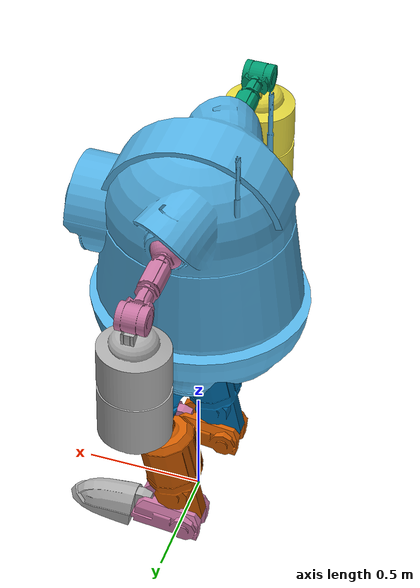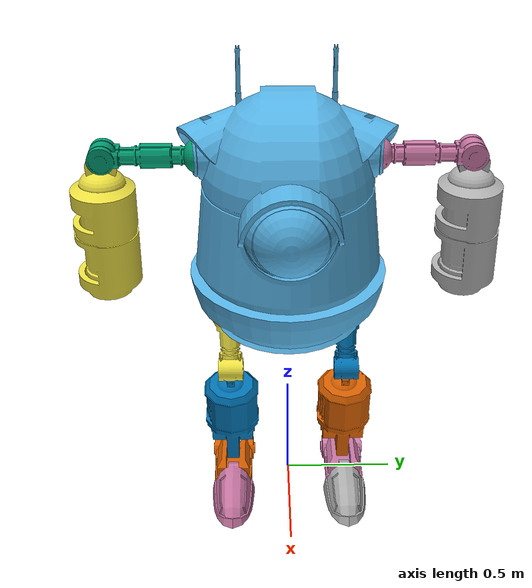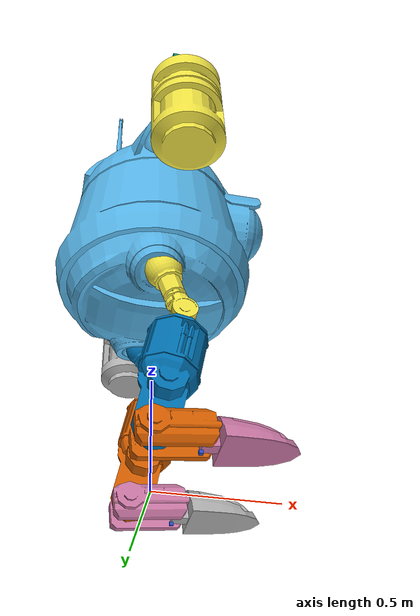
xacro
<?xml version="1.0"?>

<robot name="catbot" xmlns:xacro="http://www.ros.org/wiki/xacro">
<xacro:include filename="$(find catbot_description)/urdf/main.gazebo" />

<link name="base_footprint">
<inertial>
    <origin xyz="0.0 0.0 0.0" rpy="0 0 0" />
    <mass value="0.3" />
    <inertia ixx="0.1" ixy="0.1" ixz="0.1" iyy="0.1" iyz="0.1" izz="0.1"/>
</inertial>
<visual>
    <origin xyz="0 0 0" rpy="0 0 0" />
    <geometry>
     <cylinder length="0.001" radius="0.001" />
    </geometry>
</visual>
<collision>
<origin xyz="0 0.0 0" rpy="0 0 0" />
    <geometry>
     <cylinder length="0.001" radius="0.001" />
    </geometry>
</collision>
</link>

<link name="base_body">
<inertial>
    <origin xyz="0.0 0.0 0.5" rpy="0 0 0" />
    <mass value="4.0" />
    <inertia ixx="0.42841" ixy="-2.3739" ixz="0.00227" iyy="0.43178" iyz="1.46390" izz="0.08742"/>
</inertial>
<visual>
    <origin xyz="0 0 0" rpy="0 0 0" />
    <geometry>
    <mesh filename="package://catbot_description/meshes/dae/body.dae" scale="1 1 1" />
    </geometry>
</visual>
<collision>
<origin xyz="0 0.0 0" rpy="0 0 0" />
    <geometry>
    <mesh filename="package://catbot_description/meshes/dae/body.dae" scale="1 1 1" />
    </geometry>
</collision>
</link>

<joint name="base_joint" type="fixed">
    <axis xyz="0 0 0" />
    <origin xyz="0 0 0.80" rpy="0 0 0" />
    <parent link="base_footprint" />
    <child link="base_body" />
</joint>

<!-- ##########################################################
     ######################### left leg ########################
     ########################################################## -->

<joint
    name="bum_zlj" type="revolute">
    <origin xyz="-0.02 0.265 0.16" rpy="0 -0.3 0" />
    <parent link="base_body" />
    <child link="bum_zl" />
    <axis xyz="0 0 1" />
    <limit lower="-0.345" upper="0.345" effort="1000" velocity="3"/>
    <!-- dynamics damping="5" friction="0.0"/ -->
</joint>

<link name="bum_zl">
<inertial>
    <origin xyz="0.0 0.0 -0.19" rpy="0 0 0" />
    <mass value="0.3" />
    <inertia ixx="0.1" ixy="0.1" ixz="0.1" iyy="0.1" iyz="0.1" izz="0.1"/>
</inertial>
<visual>
    <origin xyz="0 0 0" rpy="0 0 1.571" />
    <geometry>
    <cylinder length="0.001" radius="0.001" />
    </geometry>
</visual>
<collision>
<origin xyz="0 0.0 0" rpy="0 0 1.571" />
    <geometry>
    <cylinder length="0.001" radius="0.001" />
    </geometry>
</collision>
</link>

<joint
    name="bum_xlj" type="revolute">
    <origin xyz="0 0 0" rpy="0 0 0" />
    <parent link="bum_zl" />
    <child link="bum_xl" />
    <axis xyz="1 0 0" />
    <limit lower="-0.345" upper="1" effort="1000" velocity="3"/>
    <!-- dynamics damping="5" friction="0.0"/ -->
</joint>

<link name="bum_xl">
<inertial>
    <origin xyz="0.0 0.0 -0.19" rpy="0 0 0" />
    <mass value="0.3" />
    <inertia ixx="0.1" ixy="0.1" ixz="0.1" iyy="0.1" iyz="0.1" izz="0.1"/>
</inertial>
<visual>
    <origin xyz="0 0 0" rpy="0 0 1.571" />
    <geometry>
    <cylinder length="0.001" radius="0.001" />
    </geometry>
</visual>
<collision>
<origin xyz="0 0.0 0" rpy="0 0 1.571" />
    <geometry>
    <cylinder length="0.001" radius="0.001" />
    </geometry>
</collision>
</link>

<joint
    name="bum_ylj" type="revolute">
    <origin xyz="0 0 0" rpy="0 0 3.142" />
    <parent link="bum_xl" />
    <child link="left_hip" />
    <axis xyz="0 1 0" />
    <limit lower="0" upper="1" effort="1000" velocity="3"/>
    <!-- dynamics damping="5" friction="0.0"/ -->
</joint>

<link name="left_hip">
<inertial>
    <origin xyz="0.0 0 -0.19" rpy="0 0 0" />
    <mass value="0.3" />
    <inertia ixx="0.31319" ixy="-1.5919" ixz="0.00039" iyy="0.314057" iyz="-0.00060" izz="0.02458"/>
</inertial>
<visual>
    <origin xyz="0 0 0" rpy="0 0 1.571" />
    <geometry>
    <mesh filename="package://catbot_description/meshes/dae/hip.dae" scale="1 1 1" />
    </geometry>
</visual>
<collision>
<origin xyz="0 0.0 0" rpy="0 0 1.571" />
    <geometry>
    <mesh filename="package://catbot_description/meshes/dae/hip.dae" scale="1 1 1" />
    </geometry>
</collision>
</link>

<joint
    name="knee_left" type="revolute">
    <origin xyz="0 0 -0.335" rpy="0 -0.5 0" />
    <parent link="left_hip" />
    <child link="left_shin" />
    <axis xyz="0 1 0" />
    <limit lower="-1.3" upper="0" effort="1000" velocity="3"/>
    <!-- dynamics damping="5" friction="0.0"/ -->
</joint>

<link name="left_shin">
<inertial>
    <origin xyz="0.0 0.0 -0.2" rpy="0 0 0" />
    <mass value="0.3" />
    <inertia ixx="0.283162" ixy="0.00034" ixz="0.001493" iyy="0.284290" iyz="0.000595" izz="0.0277465"/>
</inertial>
<visual>
    <origin xyz="0 0 0" rpy="0 0 1.571" />
    <geometry>
    <mesh filename="package://catbot_description/meshes/dae/shin.dae" scale="1 1 1" />
    </geometry>
</visual>
<collision>
<origin xyz="0 0.0 0" rpy="0 0 1.571" />
    <geometry>
    <mesh filename="package://catbot_description/meshes/dae/shin.dae" scale="1 1 1" />
    </geometry>
</collision>
</link>

<joint
    name="ankle_lj" type="revolute">
    <origin xyz="0 0 -0.58" rpy="0 0.3 0" />
    <parent link="left_shin" />
    <child link="left_ankle" />
    <axis xyz="0 1 0" />
    <limit lower="-1.3" upper="0.3" effort="1000" velocity="3"/>
    <!-- dynamics damping="5" friction="0.0"/ -->
</joint>

<link name="left_ankle">
<inertial>
    <origin xyz="0.0 0.0 0.0" rpy="0 0 0" />
    <mass value="0.3" />
    <inertia ixx="0.119924" ixy="-0.0003874" ixz="-0.0010433" iyy="0.166674" iyz="5.8010177" izz="0.1314669"/>
</inertial>
<visual>
    <origin xyz="-0.06 0 0" rpy="0 0 3.142" />
    <geometry>
    <mesh filename="package://catbot_description/meshes/dae/ankle.dae" scale="1 1 1" />
    </geometry>
</visual>
<collision>
<origin xyz="-0.06 0.0 0" rpy="0 0 3.142" />
    <geometry>
    <mesh filename="package://catbot_description/meshes/dae/ankle.dae" scale="1 1 1" />
    </geometry>
</collision>
</link>

<joint
    name="foot_lj" type="revolute">
    <origin xyz="-0.16 0 -0.028" rpy="0 0 0" />
    <parent link="left_ankle" />
    <child link="left_foot" />
    <axis xyz="0 1 0" />
    <limit lower="-0.4" upper="0.7" effort="1000" velocity="3"/>
    <!-- dynamics damping="5" friction="0.0"/ -->
</joint>

<link name="left_foot">
<inertial>
    <origin xyz="0.0 0.0 0.0" rpy="0 0 0" />
    <mass value="0.5" />
    <inertia ixx="0.10917" ixy="1.3005" ixz="-0.01020" iyy="0.15687" iyz="3.44815" izz="0.1"/>
</inertial>
<visual>
    <origin xyz="0 0 0" rpy="0 0 3.142" />
    <geometry>
    <mesh filename="package://catbot_description/meshes/dae/foot.dae" scale="1 1 1" />
    </geometry>
</visual>
<collision>
<origin xyz="0 0.0 0" rpy="0 0 3.142" />
    <geometry>
    <mesh filename="package://catbot_description/meshes/dae/foot.dae" scale="1 1 1" />
    </geometry>
</collision>
</link>

<joint
    name="contact_lj" type="fixed">
    <origin xyz="0 0 -0.043" rpy="0 0 0" />
    <parent link="left_foot" />
    <child link="left_leg_contact_sensor" />
    <axis xyz="0 1 0" />
    <!-- dynamics damping="5" friction="0.0"/ -->
</joint>

<link name="left_leg_contact_sensor">
<inertial >
            <origin xyz="0 0 0" rpy="0 0 0"/>
            <mass value="0.01" />
            <inertia ixx="1.28e-06" ixy="0.0" ixz="0.0" iyy="1.28e-06" iyz="0.0" izz="1.28e-06"/>
        </inertial>
        <collision>
            <origin xyz="0 0 0" rpy="0 0 0"/>
            <geometry>
                <box size="0.015 0.015 0.015"/>

            </geometry>
        </collision>
        <visual>
            <origin rpy="0.0 0 0" xyz="0 0 0"/>
            <geometry>
                <box size="0.015 0.01 0.015"/>

            </geometry>
        </visual>
</link>

<!-- ##########################################################
     ######################### right leg ########################
     ########################################################## -->

<joint
    name="bum_zrj" type="revolute">
    <origin xyz="-0.02 -0.265 0.16" rpy="0 -0.3 0" />
    <parent link="base_body" />
    <child link="bum_zr" />
    <axis xyz="0 0 1" />
    <limit lower="-0.345" upper="0.345" effort="1000" velocity="3"/>
    <!-- dynamics damping="5" friction="0.0"/ -->
</joint>

<link name="bum_zr">
<inertial>
    <origin xyz="0.0 0.0 -0.19" rpy="0 0 0" />
    <mass value="0.3" />
    <inertia ixx="0.1" ixy="0.1" ixz="0.1" iyy="0.1" iyz="0.1" izz="0.1"/>
</inertial>
<visual>
    <origin xyz="0 0 0" rpy="0 0 1.571" />
    <geometry>
    <cylinder length="0.001" radius="0.001" />
    </geometry>
</visual>
<collision>
<origin xyz="0 0.0 0" rpy="0 0 1.571" />
    <geometry>
    <cylinder length="0.001" radius="0.001" />
    </geometry>
</collision>
</link>

<joint
    name="bum_xrj" type="revolute">
    <origin xyz="0 0 0" rpy="0 0 0" />
    <parent link="bum_zr" />
    <child link="bum_xr" />
    <axis xyz="1 0 0" />
    <limit lower="-1" upper="0.345" effort="1000" velocity="3"/>
    <!-- dynamics damping="5" friction="0.0"/ -->
</joint>

<link name="bum_xr">
<inertial>
    <origin xyz="0.0 0.0 -0.19" rpy="0 0 0" />
    <mass value="0.3" />
    <inertia ixx="0.1" ixy="0.1" ixz="0.1" iyy="0.1" iyz="0.1" izz="0.1"/>
</inertial>
<visual>
    <origin xyz="0 0 0" rpy="0 0 1.571" />
    <geometry>
    <cylinder length="0.001" radius="0.001" />
    </geometry>
</visual>
<collision>
<origin xyz="0 0.0 0" rpy="0 0 1.571" />
    <geometry>
    <cylinder length="0.001" radius="0.001" />
    </geometry>
</collision>
</link>

<joint
    name="bum_yrj" type="revolute">
    <origin xyz="0 0 0" rpy="0 0 3.142" />
    <parent link="bum_xr" />
    <child link="right_hip" />
    <axis xyz="0 1 0" />
    <limit lower="0" upper="1" effort="1000" velocity="3"/>
    <!-- dynamics damping="5" friction="0.0"/ -->
</joint>

<link name="right_hip">
<inertial>
    <origin xyz="0.0 0 -0.19" rpy="0 0 0" />
    <mass value="0.3" />
    <inertia ixx="0.31319" ixy="-1.5919" ixz="0.00039" iyy="0.314057" iyz="-0.00060" izz="0.02458"/>
</inertial>
<visual>
    <origin xyz="0 0 0" rpy="0 0 1.571" />
    <geometry>
    <mesh filename="package://catbot_description/meshes/dae/hip.dae" scale="1 1 1" />
    </geometry>
</visual>
<collision>
<origin xyz="0 0.0 0" rpy="0 0 1.571" />
    <geometry>
    <mesh filename="package://catbot_description/meshes/dae/hip.dae" scale="1 1 1" />
    </geometry>
</collision>
</link>

<joint
    name="knee_right" type="revolute">
    <origin xyz="0 0 -0.335" rpy="0 -0.5 0" />
    <parent link="right_hip" />
    <child link="right_shin" />
    <axis xyz="0 1 0" />
    <limit lower="-1.3" upper="0" effort="1000" velocity="3"/>
    <!-- dynamics damping="5" friction="0.0"/ -->
</joint>

<link name="right_shin">
<inertial>
    <origin xyz="0.0 0.0 -0.2" rpy="0 0 0" />
    <mass value="0.3" />
    <inertia ixx="0.283162" ixy="0.00034" ixz="0.001493" iyy="0.284290" iyz="0.000595" izz="0.0277465"/>
</inertial>
<visual>
    <origin xyz="0 0 0" rpy="0 0 1.571" />
    <geometry>
    <mesh filename="package://catbot_description/meshes/dae/shin.dae" scale="1 1 1" />
    </geometry>
</visual>
<collision>
<origin xyz="0 0.0 0" rpy="0 0 1.571" />
    <geometry>
    <mesh filename="package://catbot_description/meshes/dae/shin.dae" scale="1 1 1" />
    </geometry>
</collision>
</link>

<joint
    name="ankle_rj" type="revolute">
    <origin xyz="0 0 -0.58" rpy="0 0.3 0" />
    <parent link="right_shin" />
    <child link="right_ankle" />
    <axis xyz="0 1 0" />
    <limit lower="-1.3" upper="0.3" effort="1000" velocity="3"/>
    <!-- dynamics damping="5" friction="0.0"/ -->
</joint>

<link name="right_ankle">
<inertial>
    <origin xyz="0.0 0.0 0.0" rpy="0 0 0" />
    <mass value="0.3" />
    <inertia ixx="0.119924" ixy="-0.0003874" ixz="-0.0010433" iyy="0.166674" iyz="5.8010177" izz="0.1314669"/>
</inertial>
<visual>
    <origin xyz="-0.06 0 0" rpy="0 0 3.142" />
    <geometry>
    <mesh filename="package://catbot_description/meshes/dae/ankle.dae" scale="1 1 1" />
    </geometry>
</visual>
<collision>
<origin xyz="-0.06 0.0 0" rpy="0 0 3.142" />
    <geometry>
    <mesh filename="package://catbot_description/meshes/dae/ankle.dae" scale="1 1 1" />
    </geometry>
</collision>
</link>

<joint
    name="foot_rj" type="revolute">
    <origin xyz="-0.16 0 -0.028" rpy="0 0 0" />
    <parent link="right_ankle" />
    <child link="right_foot" />
    <axis xyz="0 1 0" />
    <limit lower="-0.4" upper="0.7" effort="1000" velocity="3"/>
    <!-- dynamics damping="5" friction="0.0"/ -->
</joint>

<link name="right_foot">
<inertial>
    <origin xyz="0.0 0.0 0.0" rpy="0 0 0" />
    <mass value="0.5" />
    <inertia ixx="0.119924" ixy="-0.0003874" ixz="-0.0010433" iyy="0.166674" iyz="5.8010177" izz="0.1314669"/>
</inertial>
<visual>
    <origin xyz="0 0 0" rpy="0 0 3.142" />
    <geometry>
    <mesh filename="package://catbot_description/meshes/dae/foot.dae" scale="1 1 1" />
    </geometry>
</visual>
<collision>
<origin xyz="0 0.0 0" rpy="0 0 3.142" />
    <geometry>
    <mesh filename="package://catbot_description/meshes/dae/foot.dae" scale="1 1 1" />
    </geometry>
</collision>
</link>

<joint
    name="contact_rj" type="fixed">
    <origin xyz="0 0 -0.043" rpy="0 0 0" />
    <parent link="right_foot" />
    <child link="right_leg_contact_sensor" />
    <axis xyz="0 1 0" />
    <!-- dynamics damping="5" friction="0.0"/ -->
</joint>

<link name="right_leg_contact_sensor">
<inertial >
            <origin xyz="0 0 0" rpy="0 0 0"/>
            <mass value="0.01" />
            <inertia ixx="1.28e-06" ixy="0.0" ixz="0.0" iyy="1.28e-06" iyz="0.0" izz="1.28e-06"/>
        </inertial>
        <collision>
            <origin xyz="0 0 0" rpy="0 0 0"/>
            <geometry>
                <box size="0.015 0.015 0.015"/>

            </geometry>
        </collision>
        <visual>
            <origin rpy="0.0 0 0" xyz="0 0 0"/>
            <geometry>
                <box size="0.015 0.015 0.015"/>

            </geometry>
        </visual>
</link>

<!-- ##########################################################
     ######################### right hand ########################
     ########################################################## -->

<joint
    name="shoulder_zrj" type="revolute">
    <origin xyz="0 -0.3 0.87" rpy="0 0 0" />
    <parent link="base_body" />
    <child link="shoulder_zr" />
    <axis xyz="0 0 1" />
    <limit lower="-0.345" upper="1.65" effort="1000" velocity="3"/>
    <!-- dynamics damping="5" friction="0.0"/ -->
</joint>

<link name="shoulder_zr">
<inertial>
    <origin xyz="0.0 0.0 0.0" rpy="0 0 0" />
    <mass value="0.3" />
    <inertia ixx="0.1" ixy="0.1" ixz="0.1" iyy="0.1" iyz="0.1" izz="0.1"/>
</inertial>
<visual>
    <origin xyz="0 0 0" rpy="0 0 1.571" />
    <geometry>
    <cylinder length="0.001" radius="0.001" />
    </geometry>
</visual>
<collision>
<origin xyz="0 0.0 0" rpy="0 0 1.571" />
    <geometry>
    <cylinder length="0.001" radius="0.001" />
    </geometry>
</collision>
</link>

<joint
    name="shoulder_xrj" type="revolute">
    <origin xyz="0 0 0" rpy="0 0 0" />
    <parent link="shoulder_zr" />
    <child link="shoulder_xr" />
    <axis xyz="1 0 0" />
    <limit lower="-0.1" upper="1.6" effort="1000" velocity="3"/>
    <!-- dynamics damping="5" friction="0.0"/ -->
</joint>

<link name="shoulder_xr">
<inertial>
    <origin xyz="0.0 0.0 0.0" rpy="0 0 0" />
    <mass value="0.3" />
    <inertia ixx="0.1" ixy="0.1" ixz="0.1" iyy="0.1" iyz="0.1" izz="0.1"/>
</inertial>
<visual>
    <origin xyz="0 0 0" rpy="0 0 1.571" />
    <geometry>
    <cylinder length="0.001" radius="0.001" />
    </geometry>
</visual>
<collision>
<origin xyz="0 0.0 0" rpy="0 0 1.571" />
    <geometry>
    <cylinder length="0.001" radius="0.001" />
    </geometry>
</collision>
</link>

<joint
    name="shoulder_yrj" type="revolute">
    <origin xyz="0 0 0" rpy="0 0 3.142" />
    <parent link="shoulder_xr" />
    <child link="right_shoulder" />
    <axis xyz="0 1 0" />
    <limit lower="0" upper="3" effort="1000" velocity="3"/>
    <!-- dynamics damping="5" friction="0.0"/ -->
</joint>

<link name="right_shoulder">
<inertial>
    <origin xyz="0.0 0.0 0.0" rpy="0 0 0" />
    <mass value="0.3" />
    <inertia ixx="0.030306" ixy="1.072426" ixz="-0.00014" iyy="0.123799" iyz="-3.24634" izz="0.10389"/>

</inertial>
<visual>
    <origin xyz="0 0 0" rpy="1.571 0 1.571" />
    <geometry>
    <mesh filename="package://catbot_description/meshes/dae/arm.dae" scale="1 1 1" />
    </geometry>
</visual>
<collision>
<origin xyz="0 0.0 0" rpy="1.571 0 1.571" />
    <geometry>
    <mesh filename="package://catbot_description/meshes/dae/arm.dae" scale="1 1 1" />
    </geometry>
</collision>
</link>

<joint
    name="forearm_yrj" type="revolute">
    <origin xyz="0 0.48 0" rpy="0 0 3.142" />
    <parent link="right_shoulder" />
    <child link="right_forearm" />
    <axis xyz="1 0 0" />
    <limit lower="-1.6" upper="0" effort="1000" velocity="3"/>
    <!-- dynamics damping="5" friction="0.0"/ -->
</joint>

<link name="right_forearm">
<inertial>
    <origin xyz="0.0 0.0 0.0" rpy="0 0 0" />
    <mass value="0.3" />
    <inertia ixx="0.37633" ixy="-5.2759" ixz="-8.13739" iyy="0.382769" iyz="-0.00136" izz="0.03977"/>
</inertial>
<visual>
    <origin xyz="0 0 0" rpy="0 0 0" />
    <geometry>
    <mesh filename="package://catbot_description/meshes/dae/forearm.dae" scale="1 1 1" />
    </geometry>
</visual>
<collision>
<origin xyz="0 0.0 0" rpy="0 0 0" />
    <geometry>
    <mesh filename="package://catbot_description/meshes/dae/forearm.dae" scale="1 1 1" />
    </geometry>
</collision>
</link>

<!-- ##########################################################
     ######################### right left ########################
     ########################################################## -->

<joint
    name="shoulder_zlj" type="revolute">
    <origin xyz="0 0.3 0.87" rpy="0 0 3.142" />
    <parent link="base_body" />
    <child link="shoulder_zl" />
    <axis xyz="0 0 1" />
    <limit lower="-1.65" upper="0.1" effort="1000" velocity="3"/>
    <!-- dynamics damping="5" friction="0.0"/ -->
</joint>

<link name="shoulder_zl">
<inertial>
    <origin xyz="0.0 0.0 0.0" rpy="0 0 0" />
    <mass value="0.3" />
    <inertia ixx="0.1" ixy="0.1" ixz="0.1" iyy="0.1" iyz="0.1" izz="0.1"/>
</inertial>
<visual>
    <origin xyz="0 0 0" rpy="0 0 1.571" />
    <geometry>
    <cylinder length="0.001" radius="0.001" />
    </geometry>
</visual>
<collision>
<origin xyz="0 0.0 0" rpy="0 0 1.571" />
    <geometry>
    <cylinder length="0.001" radius="0.001" />
    </geometry>
</collision>
</link>

<joint
    name="shoulder_xlj" type="revolute">
    <origin xyz="0 0 0" rpy="0 0 0" />
    <parent link="shoulder_zl" />
    <child link="shoulder_xl" />
    <axis xyz="1 0 0" />
    <limit lower="-0.1" upper="1.6" effort="1000" velocity="3"/>
    <!-- dynamics damping="5" friction="0.0"/ -->
</joint>

<link name="shoulder_xl">
<inertial>
    <origin xyz="0.0 0.0 0.0" rpy="0 0 0" />
    <mass value="0.3" />
    <inertia ixx="0.1" ixy="0.1" ixz="0.1" iyy="0.1" iyz="0.1" izz="0.1"/>
</inertial>
<visual>
    <origin xyz="0 0 0" rpy="0 0 1.571" />
    <geometry>
    <cylinder length="0.001" radius="0.001" />
    </geometry>
</visual>
<collision>
<origin xyz="0 0.0 0" rpy="0 0 1.571" />
    <geometry>
    <cylinder length="0.001" radius="0.001" />
    </geometry>
</collision>
</link>

<joint
    name="shoulder_ylj" type="revolute">
    <origin xyz="0 0 0" rpy="0 0 3.142" />
    <parent link="shoulder_xl" />
    <child link="left_shoulder" />
    <axis xyz="0 1 0" />
    <limit lower="-3" upper="0" effort="1000" velocity="3"/>
    <!-- dynamics damping="5" friction="0.0"/ -->
</joint>

<link name="left_shoulder">
<inertial>
    <origin xyz="0.0 0.0 0.0" rpy="0 0 0" />
    <mass value="0.3" />
    <inertia ixx="0.030306" ixy="1.072426" ixz="-0.00014" iyy="0.123799" iyz="-3.24634" izz="0.10389"/>
</inertial>
<visual>
    <origin xyz="0 0 0" rpy="1.571 0 1.571" />
    <geometry>
    <mesh filename="package://catbot_description/meshes/dae/arm.dae" scale="1 1 1" />
    </geometry>
</visual>
<collision>
<origin xyz="0 0.0 0" rpy="1.571 0 1.571" />
    <geometry>
    <mesh filename="package://catbot_description/meshes/dae/arm.dae" scale="1 1 1" />
    </geometry>
</collision>
</link>

<joint
    name="forearm_ylj" type="revolute">
    <origin xyz="0 0.48 0" rpy="0 0 3.142" />
    <parent link="left_shoulder" />
    <child link="left_forearm" />
    <axis xyz="1 0 0" />
    <limit lower="-1.6" upper="0" effort="1000" velocity="3"/>
    <!-- dynamics damping="5" friction="0.0"/ -->
</joint>

<link name="left_forearm">
<inertial>
    <origin xyz="0.0 0.0 0.0" rpy="0 0 0" />
    <mass value="0.3" />
    <inertia ixx="0.37633" ixy="-5.2759" ixz="-8.13739" iyy="0.382769" iyz="-0.00136" izz="0.03977"/>
</inertial>
<visual>
    <origin xyz="0 0 0" rpy="0 0 3.142" />
    <geometry>
    <mesh filename="package://catbot_description/meshes/dae/forearm.dae" scale="1 1 1" />
    </geometry>
</visual>
<collision>
<origin xyz="0 0.0 0" rpy="0 0 3.142" />
    <geometry>
    <mesh filename="package://catbot_description/meshes/dae/forearm.dae" scale="1 1 1" />
    </geometry>
</collision>
</link>

</robot>
